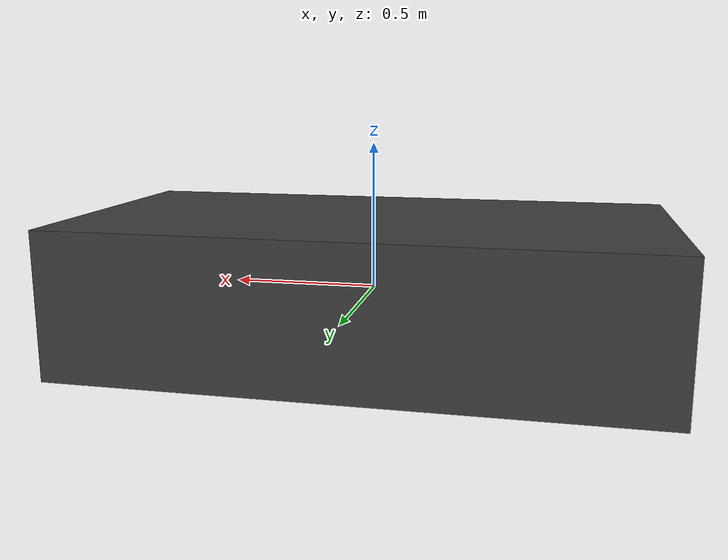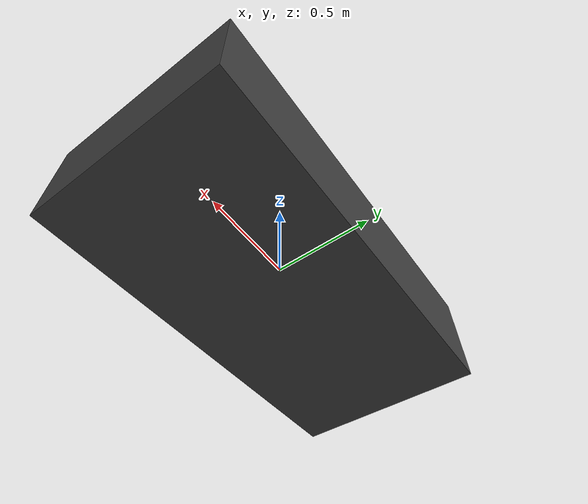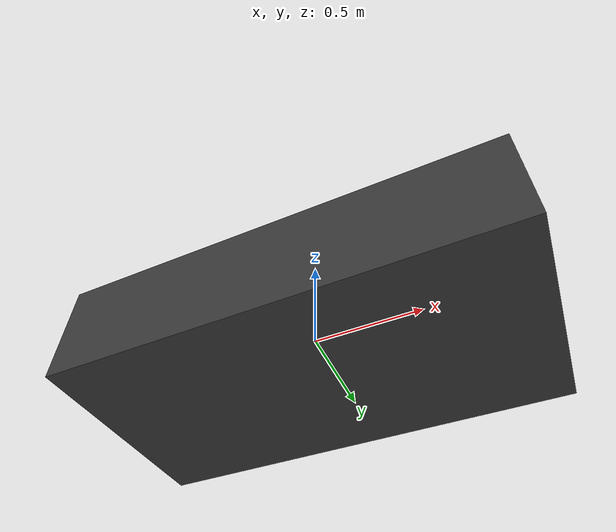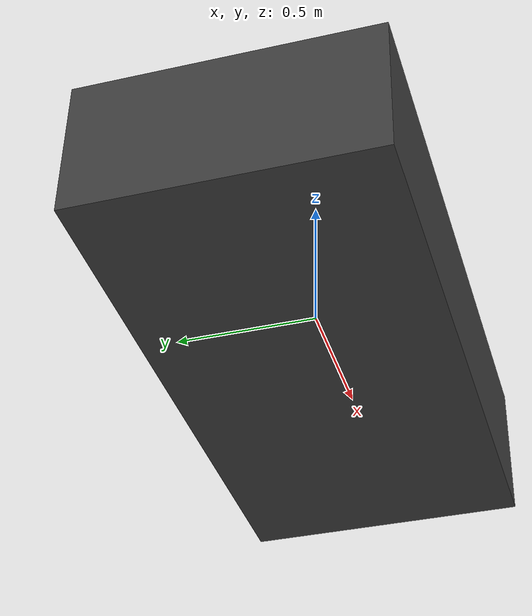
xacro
<?xml version="1.0" ?>
<robot name="ackerman_robot" xmlns:xacro="http://www.ros.rog/wiki/xacro">

	  <xacro:arg name="body_length" default="2.0" />
  <xacro:arg name="body_width" default="1.0" />
  <xacro:arg name="body_height" default="0.5" />
  <xacro:arg name="body_density" default="1000.0" />
  <xacro:arg name="wheel_radius" default="0.3" />
  <xacro:arg name="wheel_width" default="0.1" />
  <xacro:arg name="wheel_density" default="1000.0" />
  <xacro:arg name="max_steering_angle" default="0.6108" />
  <xacro:arg name="max_steering_angular_velocity" default="1.570796" />
  <xacro:arg name="max_steering_effort" default="1.0" />
  <xacro:arg name="max_velocity" default="1.0" />
  <xacro:arg name="max_effort" default="10.0" />

  <!-- Mathematical Constants -->
  <xacro:property name="PI" value="3.14159265"/>

  <!-- Vehicle Properties -->
  <xacro:property name="body_length" value="$(arg body_length)"/>
  <xacro:property name="body_width" value="$(arg body_width)"/>
  <xacro:property name="body_height" value="$(arg body_height)"/>
  <xacro:property name="body_density" value="$(arg body_density)"/>
    <xacro:property name="body_mass" value="${body_density * body_length * body_height * body_width}"/>
  <xacro:property name="body_inertia_x" value="${1.0/12.0 * body_mass * (body_height*body_height + body_width*body_width)}"/>
  <xacro:property name="body_inertia_y" value="${1.0/12.0 * body_mass * (body_length*body_length + body_height*body_height)}"/>
  <xacro:property name="body_inertia_z" value="${1.0/12.0 * body_mass * (body_length*body_length + body_width*body_width)}"/>

    <!-- Body Link -->
  <link name="body_link">
    <visual>
      <origin xyz="0.0 0.0 0.0" rpy="0.0 0.0 0.0"/>
      <geometry>
        <box size="${body_length} ${body_width} ${body_height}"/>
      </geometry>
      <material name="body_material">
        <color rgba="0.25 0.25 0.25 1.0"/>
      </material>
    </visual>
    <collision>
      <origin xyz="0.0 0.0 0.0" rpy="0.0 0.0 0.0"/>
      <geometry>
        <box size="${body_length} ${body_width} ${body_height}"/>
      </geometry>
    </collision>
    <inertial>
      <mass value="${body_mass}"/>
      <inertia ixx="${body_inertia_x}" ixy="0.0" ixz="0.0" iyy="${body_inertia_y}" iyz="0" izz="${body_inertia_z}"/>
      <origin xyz="0 0 0" rpy="0 0 0"/>
    </inertial>
  </link>

  <gazebo>
<plugin filename="gz-sim-triggered-publisher-system"
		    name="gz::sim::systems::TriggeredPublisher">
	    <input type="gz.msgs.Int32" topic="/keyboard/keypress">
		    <match field="data">16777235</match>
	    </input>
	    <output type="gz.msgs.Twist" topic="/cmd_vel">
		    linear: {x: 0.5}, angular: {z: 0.0}
	    </output>
    </plugin>
 <plugin
            filename="gz-sim-user-commands-system"
            name="gz::sim::systems::UserCommands">
        </plugin>
        <plugin
            filename="gz-sim-scene-broadcaster-system"
            name="gz::sim::systems::SceneBroadcaster">
        </plugin>

<plugin
			filename="gz-sim-diff-drive-system"
			name="gz::sim::systems::DiffDrive">
		<odom_publish_frequency>1</odom_publish_frequency>
		<topic>cmd_vel</topic>
	</plugin>

  </gazebo>

</robot>
